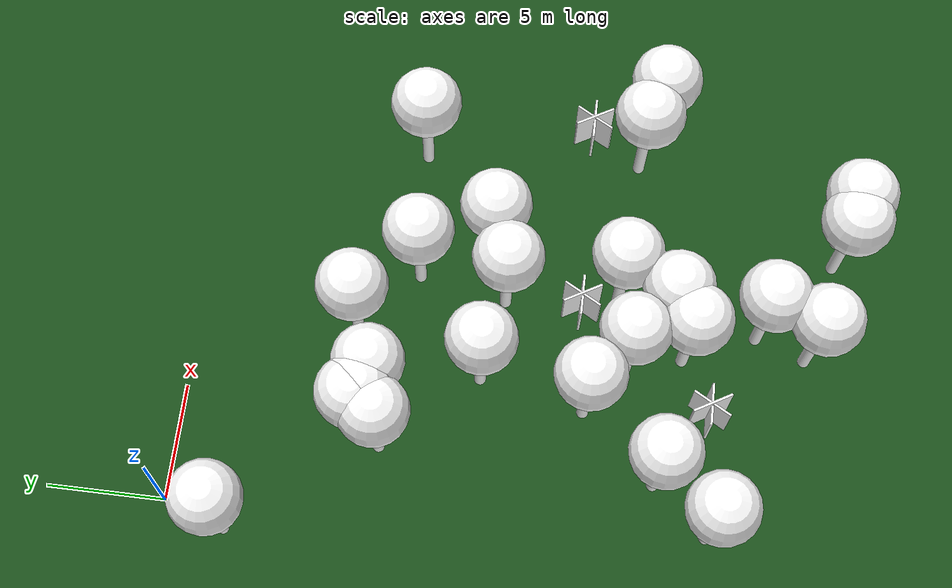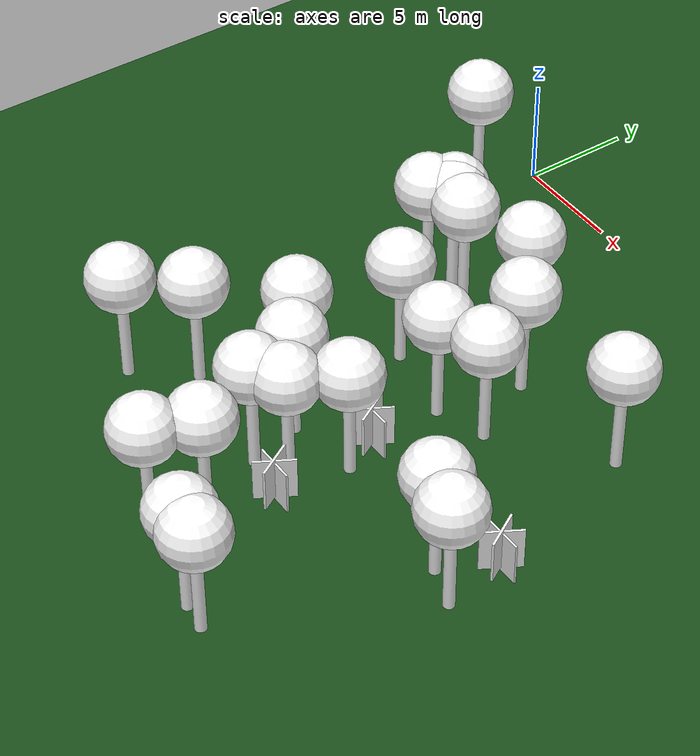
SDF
<sdf version="1.8">
 <world name="forest_world">
  <model name="fire_8">
   <pose>10.39 -16.25 1.00 0 0 0.00</pose>
   <static>true</static>
   <link name="fire_link">
    <visual name="fire_8_fire_main_0">
     <geometry><box><size>1.80 0.10 2.00</size></box></geometry>
     <material>
      <ambient>0.7 0.35 0.0 1</ambient>
      <diffuse>1 1 1 1</diffuse>
      <specular>0 0 0 1</specular>
      <emissive>0 0 0 1</emissive>
      <pbr>
       <metal><albedo_map>textures/fire.png</albedo_map><metalness>0.0</metalness><roughness>0.6</roughness></metal>
      </pbr>
     </material>
     <transparency>0.0</transparency>
     <cast_shadows>false</cast_shadows>
    </visual>
    <visual name="fire_8_fire_60_1">
     <pose>0.00 0.00 0.10 0 0 1.05</pose>
     <geometry><box><size>1.80 0.10 2.00</size></box></geometry>
     <material>
      <ambient>0.7 0.35 0.0 1</ambient>
      <diffuse>1 1 1 1</diffuse>
      <specular>0 0 0 1</specular>
      <emissive>0 0 0 1</emissive>
      <pbr>
       <metal><albedo_map>textures/fire.png</albedo_map><metalness>0.0</metalness><roughness>0.6</roughness></metal>
      </pbr>
     </material>
     <transparency>0.0</transparency>
     <cast_shadows>false</cast_shadows>
    </visual>
    <visual name="fire_8_fire_120_2">
     <pose>0.00 0.00 0.20 0 0 2.09</pose>
     <geometry><box><size>1.80 0.10 2.00</size></box></geometry>
     <material>
      <ambient>0.7 0.35 0.0 1</ambient>
      <diffuse>1 1 1 1</diffuse>
      <specular>0 0 0 1</specular>
      <emissive>0 0 0 1</emissive>
      <pbr>
       <metal><albedo_map>textures/fire.png</albedo_map><metalness>0.0</metalness><roughness>0.6</roughness></metal>
      </pbr>
     </material>
     <transparency>0.0</transparency>
     <cast_shadows>false</cast_shadows>
    </visual>
    <light type="point" name="fire_8_light_0">
     <pose>0.40 0.00 0.50 0 0 0</pose>
     <diffuse>1.0 0.7 0.3 1</diffuse>
     <specular>1.0 0.8 0.3 1</specular>
     <intensity>2</intensity>
     <attenuation>
      <range>2</range>
      <constant>0.1</constant>
      <linear>0.05</linear>
      <quadratic>0.02</quadratic>
     </attenuation>
     <cast_shadows>false</cast_shadows>
    </light>
    <light type="point" name="fire_8_light_1">
     <pose>-0.20 0.35 0.50 0 0 0</pose>
     <diffuse>1.0 0.7 0.3 1</diffuse>
     <specular>1.0 0.8 0.3 1</specular>
     <intensity>2</intensity>
     <attenuation>
      <range>2</range>
      <constant>0.1</constant>
      <linear>0.05</linear>
      <quadratic>0.02</quadratic>
     </attenuation>
     <cast_shadows>false</cast_shadows>
    </light>
    <light type="point" name="fire_8_light_2">
     <pose>-0.20 -0.35 0.50 0 0 0</pose>
     <diffuse>1.0 0.7 0.3 1</diffuse>
     <specular>1.0 0.8 0.3 1</specular>
     <intensity>2</intensity>
     <attenuation>
      <range>2</range>
      <constant>0.1</constant>
      <linear>0.05</linear>
      <quadratic>0.02</quadratic>
     </attenuation>
     <cast_shadows>false</cast_shadows>
    </light>
   </link>
   <plugin filename="libignition-gazebo-pose-publisher-system.so" name="ignition::gazebo::systems::PosePublisher">
    <frame_id>world</frame_id>
    <publish_link_pose>true</publish_link_pose>
    <use_pose_vector_msg>true</use_pose_vector_msg>
    <static_publisher>true</static_publisher>
    <static_update_frequency>1</static_update_frequency>
   </plugin>
  </model>
  <model name="fire_23">
   <pose>10.66 -21.11 1.00 0 0 0.00</pose>
   <static>true</static>
   <link name="fire_link">
    <visual name="fire_23_fire_main_0">
     <geometry><box><size>1.80 0.10 2.00</size></box></geometry>
     <material>
      <ambient>0.7 0.35 0.0 1</ambient>
      <diffuse>1 1 1 1</diffuse>
      <specular>0 0 0 1</specular>
      <emissive>0 0 0 1</emissive>
      <pbr>
       <metal><albedo_map>textures/fire.png</albedo_map><metalness>0.0</metalness><roughness>0.6</roughness></metal>
      </pbr>
     </material>
     <transparency>0.0</transparency>
     <cast_shadows>false</cast_shadows>
    </visual>
    <visual name="fire_23_fire_60_1">
     <pose>0.00 0.00 0.10 0 0 1.05</pose>
     <geometry><box><size>1.80 0.10 2.00</size></box></geometry>
     <material>
      <ambient>0.7 0.35 0.0 1</ambient>
      <diffuse>1 1 1 1</diffuse>
      <specular>0 0 0 1</specular>
      <emissive>0 0 0 1</emissive>
      <pbr>
       <metal><albedo_map>textures/fire.png</albedo_map><metalness>0.0</metalness><roughness>0.6</roughness></metal>
      </pbr>
     </material>
     <transparency>0.0</transparency>
     <cast_shadows>false</cast_shadows>
    </visual>
    <visual name="fire_23_fire_120_2">
     <pose>0.00 0.00 0.20 0 0 2.09</pose>
     <geometry><box><size>1.80 0.10 2.00</size></box></geometry>
     <material>
      <ambient>0.7 0.35 0.0 1</ambient>
      <diffuse>1 1 1 1</diffuse>
      <specular>0 0 0 1</specular>
      <emissive>0 0 0 1</emissive>
      <pbr>
       <metal><albedo_map>textures/fire.png</albedo_map><metalness>0.0</metalness><roughness>0.6</roughness></metal>
      </pbr>
     </material>
     <transparency>0.0</transparency>
     <cast_shadows>false</cast_shadows>
    </visual>
    <light type="point" name="fire_23_light_0">
     <pose>0.40 0.00 0.50 0 0 0</pose>
     <diffuse>1.0 0.7 0.3 1</diffuse>
     <specular>1.0 0.8 0.3 1</specular>
     <intensity>2</intensity>
     <attenuation>
      <range>2</range>
      <constant>0.1</constant>
      <linear>0.05</linear>
      <quadratic>0.02</quadratic>
     </attenuation>
     <cast_shadows>false</cast_shadows>
    </light>
    <light type="point" name="fire_23_light_1">
     <pose>-0.20 0.35 0.50 0 0 0</pose>
     <diffuse>1.0 0.7 0.3 1</diffuse>
     <specular>1.0 0.8 0.3 1</specular>
     <intensity>2</intensity>
     <attenuation>
      <range>2</range>
      <constant>0.1</constant>
      <linear>0.05</linear>
      <quadratic>0.02</quadratic>
     </attenuation>
     <cast_shadows>false</cast_shadows>
    </light>
    <light type="point" name="fire_23_light_2">
     <pose>-0.20 -0.35 0.50 0 0 0</pose>
     <diffuse>1.0 0.7 0.3 1</diffuse>
     <specular>1.0 0.8 0.3 1</specular>
     <intensity>2</intensity>
     <attenuation>
      <range>2</range>
      <constant>0.1</constant>
      <linear>0.05</linear>
      <quadratic>0.02</quadratic>
     </attenuation>
     <cast_shadows>false</cast_shadows>
    </light>
   </link>
   <plugin filename="libignition-gazebo-pose-publisher-system.so" name="ignition::gazebo::systems::PosePublisher">
    <frame_id>world</frame_id>
    <publish_link_pose>true</publish_link_pose>
    <use_pose_vector_msg>true</use_pose_vector_msg>
    <static_publisher>true</static_publisher>
    <static_update_frequency>1</static_update_frequency>
   </plugin>
  </model>
  <model name="fire_44">
   <pose>18.76 -16.03 1.00 0 0 0.00</pose>
   <static>true</static>
   <link name="fire_link">
    <visual name="fire_44_fire_main_0">
     <geometry><box><size>1.80 0.10 2.00</size></box></geometry>
     <material>
      <ambient>0.7 0.35 0.0 1</ambient>
      <diffuse>1 1 1 1</diffuse>
      <specular>0 0 0 1</specular>
      <emissive>0 0 0 1</emissive>
      <pbr>
       <metal><albedo_map>textures/fire.png</albedo_map><metalness>0.0</metalness><roughness>0.6</roughness></metal>
      </pbr>
     </material>
     <transparency>0.0</transparency>
     <cast_shadows>false</cast_shadows>
    </visual>
    <visual name="fire_44_fire_60_1">
     <pose>0.00 0.00 0.10 0 0 1.05</pose>
     <geometry><box><size>1.80 0.10 2.00</size></box></geometry>
     <material>
      <ambient>0.7 0.35 0.0 1</ambient>
      <diffuse>1 1 1 1</diffuse>
      <specular>0 0 0 1</specular>
      <emissive>0 0 0 1</emissive>
      <pbr>
       <metal><albedo_map>textures/fire.png</albedo_map><metalness>0.0</metalness><roughness>0.6</roughness></metal>
      </pbr>
     </material>
     <transparency>0.0</transparency>
     <cast_shadows>false</cast_shadows>
    </visual>
    <visual name="fire_44_fire_120_2">
     <pose>0.00 0.00 0.20 0 0 2.09</pose>
     <geometry><box><size>1.80 0.10 2.00</size></box></geometry>
     <material>
      <ambient>0.7 0.35 0.0 1</ambient>
      <diffuse>1 1 1 1</diffuse>
      <specular>0 0 0 1</specular>
      <emissive>0 0 0 1</emissive>
      <pbr>
       <metal><albedo_map>textures/fire.png</albedo_map><metalness>0.0</metalness><roughness>0.6</roughness></metal>
      </pbr>
     </material>
     <transparency>0.0</transparency>
     <cast_shadows>false</cast_shadows>
    </visual>
    <light type="point" name="fire_44_light_0">
     <pose>0.40 0.00 0.50 0 0 0</pose>
     <diffuse>1.0 0.7 0.3 1</diffuse>
     <specular>1.0 0.8 0.3 1</specular>
     <intensity>2</intensity>
     <attenuation>
      <range>2</range>
      <constant>0.1</constant>
      <linear>0.05</linear>
      <quadratic>0.02</quadratic>
     </attenuation>
     <cast_shadows>false</cast_shadows>
    </light>
    <light type="point" name="fire_44_light_1">
     <pose>-0.20 0.35 0.50 0 0 0</pose>
     <diffuse>1.0 0.7 0.3 1</diffuse>
     <specular>1.0 0.8 0.3 1</specular>
     <intensity>2</intensity>
     <attenuation>
      <range>2</range>
      <constant>0.1</constant>
      <linear>0.05</linear>
      <quadratic>0.02</quadratic>
     </attenuation>
     <cast_shadows>false</cast_shadows>
    </light>
    <light type="point" name="fire_44_light_2">
     <pose>-0.20 -0.35 0.50 0 0 0</pose>
     <diffuse>1.0 0.7 0.3 1</diffuse>
     <specular>1.0 0.8 0.3 1</specular>
     <intensity>2</intensity>
     <attenuation>
      <range>2</range>
      <constant>0.1</constant>
      <linear>0.05</linear>
      <quadratic>0.02</quadratic>
     </attenuation>
     <cast_shadows>false</cast_shadows>
    </light>
   </link>
   <plugin filename="libignition-gazebo-pose-publisher-system.so" name="ignition::gazebo::systems::PosePublisher">
    <frame_id>world</frame_id>
    <publish_link_pose>true</publish_link_pose>
    <use_pose_vector_msg>true</use_pose_vector_msg>
    <static_publisher>true</static_publisher>
    <static_update_frequency>1</static_update_frequency>
   </plugin>
  </model>
  <model name="fire_47">
   <pose>6.20 -21.99 1.00 0 0 0.00</pose>
   <static>true</static>
   <link name="fire_link">
    <visual name="fire_47_fire_main_0">
     <geometry><box><size>1.80 0.10 2.00</size></box></geometry>
     <material>
      <ambient>0.7 0.35 0.0 1</ambient>
      <diffuse>1 1 1 1</diffuse>
      <specular>0 0 0 1</specular>
      <emissive>0 0 0 1</emissive>
      <pbr>
       <metal><albedo_map>textures/fire.png</albedo_map><metalness>0.0</metalness><roughness>0.6</roughness></metal>
      </pbr>
     </material>
     <transparency>0.0</transparency>
     <cast_shadows>false</cast_shadows>
    </visual>
    <visual name="fire_47_fire_60_1">
     <pose>0.00 0.00 0.10 0 0 1.05</pose>
     <geometry><box><size>1.80 0.10 2.00</size></box></geometry>
     <material>
      <ambient>0.7 0.35 0.0 1</ambient>
      <diffuse>1 1 1 1</diffuse>
      <specular>0 0 0 1</specular>
      <emissive>0 0 0 1</emissive>
      <pbr>
       <metal><albedo_map>textures/fire.png</albedo_map><metalness>0.0</metalness><roughness>0.6</roughness></metal>
      </pbr>
     </material>
     <transparency>0.0</transparency>
     <cast_shadows>false</cast_shadows>
    </visual>
    <visual name="fire_47_fire_120_2">
     <pose>0.00 0.00 0.20 0 0 2.09</pose>
     <geometry><box><size>1.80 0.10 2.00</size></box></geometry>
     <material>
      <ambient>0.7 0.35 0.0 1</ambient>
      <diffuse>1 1 1 1</diffuse>
      <specular>0 0 0 1</specular>
      <emissive>0 0 0 1</emissive>
      <pbr>
       <metal><albedo_map>textures/fire.png</albedo_map><metalness>0.0</metalness><roughness>0.6</roughness></metal>
      </pbr>
     </material>
     <transparency>0.0</transparency>
     <cast_shadows>false</cast_shadows>
    </visual>
    <light type="point" name="fire_47_light_0">
     <pose>0.40 0.00 0.50 0 0 0</pose>
     <diffuse>1.0 0.7 0.3 1</diffuse>
     <specular>1.0 0.8 0.3 1</specular>
     <intensity>2</intensity>
     <attenuation>
      <range>2</range>
      <constant>0.1</constant>
      <linear>0.05</linear>
      <quadratic>0.02</quadratic>
     </attenuation>
     <cast_shadows>false</cast_shadows>
    </light>
    <light type="point" name="fire_47_light_1">
     <pose>-0.20 0.35 0.50 0 0 0</pose>
     <diffuse>1.0 0.7 0.3 1</diffuse>
     <specular>1.0 0.8 0.3 1</specular>
     <intensity>2</intensity>
     <attenuation>
      <range>2</range>
      <constant>0.1</constant>
      <linear>0.05</linear>
      <quadratic>0.02</quadratic>
     </attenuation>
     <cast_shadows>false</cast_shadows>
    </light>
    <light type="point" name="fire_47_light_2">
     <pose>-0.20 -0.35 0.50 0 0 0</pose>
     <diffuse>1.0 0.7 0.3 1</diffuse>
     <specular>1.0 0.8 0.3 1</specular>
     <intensity>2</intensity>
     <attenuation>
      <range>2</range>
      <constant>0.1</constant>
      <linear>0.05</linear>
      <quadratic>0.02</quadratic>
     </attenuation>
     <cast_shadows>false</cast_shadows>
    </light>
   </link>
   <plugin filename="libignition-gazebo-pose-publisher-system.so" name="ignition::gazebo::systems::PosePublisher">
    <frame_id>world</frame_id>
    <publish_link_pose>true</publish_link_pose>
    <use_pose_vector_msg>true</use_pose_vector_msg>
    <static_publisher>true</static_publisher>
    <static_update_frequency>1</static_update_frequency>
   </plugin>
  </model>
  <model name="tree_simple496">
   <static>1</static>
   <link name="link">
    <pose>0 0 0.1 0 -0 0</pose>
    <collision name="collision_trunk">
     <pose>0 0 2 0 -0 0</pose>
     <geometry><cylinder><radius>0.25</radius><length>4</length></cylinder></geometry>
    </collision>
    <collision name="collision_treetop">
     <pose>0 0 5.2 0 -0 0</pose>
     <geometry><sphere><radius>1.5</radius></sphere></geometry>
    </collision>
    <visual name="trunk">
     <pose>0 0 2 0 -0 0</pose>
     <geometry><cylinder><radius>0.25</radius><length>4</length></cylinder></geometry>
     <material>
      <ambient>0.5 0.5 0.5 1</ambient>
      <diffuse>1.0 1.0 1.0 1</diffuse>
      <specular>0.0 0.0 0.0 1</specular>
      <pbr>
       <metal>
        <albedo_map>../worlds/textures/tree_simple_trunk.jpg</albedo_map>
        <metalness>0.0</metalness>
        <roughness>0.8</roughness>
       </metal>
      </pbr>
     </material>
    </visual>
    <visual name="treetop">
     <pose>0 0 5.2 0 -0 0</pose>
     <geometry><sphere><radius>1.5</radius></sphere></geometry>
     <material>
      <ambient>0.5 0.5 0.5 1</ambient>
      <diffuse>1.0 1.0 1.0 1</diffuse>
      <specular>0.0 0.0 0.0 1</specular>
      <pbr>
       <metal>
        <albedo_map>../worlds/textures/tree_simple_treetop.jpg</albedo_map>
        <metalness>0.0</metalness>
        <roughness>0.9</roughness>
       </metal>
      </pbr>
     </material>
    </visual>
   </link>
   <pose>13.6194298432 -26.9856291803 0 0 -0 0</pose>
  </model>
  <model name="tree_simple478">
   <static>1</static>
   <link name="link">
    <pose>0 0 0.1 0 -0 0</pose>
    <collision name="collision_trunk">
     <pose>0 0 2 0 -0 0</pose>
     <geometry><cylinder><radius>0.25</radius><length>4</length></cylinder></geometry>
    </collision>
    <collision name="collision_treetop">
     <pose>0 0 5.2 0 -0 0</pose>
     <geometry><sphere><radius>1.5</radius></sphere></geometry>
    </collision>
    <visual name="trunk">
     <pose>0 0 2 0 -0 0</pose>
     <geometry><cylinder><radius>0.25</radius><length>4</length></cylinder></geometry>
     <material>
      <ambient>0.5 0.5 0.5 1</ambient>
      <diffuse>1.0 1.0 1.0 1</diffuse>
      <specular>0.0 0.0 0.0 1</specular>
      <pbr>
       <metal>
        <albedo_map>../worlds/textures/tree_simple_trunk.jpg</albedo_map>
        <metalness>0.0</metalness>
        <roughness>0.8</roughness>
       </metal>
      </pbr>
     </material>
    </visual>
    <visual name="treetop">
     <pose>0 0 5.2 0 -0 0</pose>
     <geometry><sphere><radius>1.5</radius></sphere></geometry>
     <material>
      <ambient>0.5 0.5 0.5 1</ambient>
      <diffuse>1.0 1.0 1.0 1</diffuse>
      <specular>0.0 0.0 0.0 1</specular>
      <pbr>
       <metal>
        <albedo_map>../worlds/textures/tree_simple_treetop.jpg</albedo_map>
        <metalness>0.0</metalness>
        <roughness>0.9</roughness>
       </metal>
      </pbr>
     </material>
    </visual>
   </link>
   <pose>6.74093075138 -12.3162984353 0 0 -0 0</pose>
  </model>
  <model name="tree_simple472">
   <static>1</static>
   <link name="link">
    <pose>0 0 0.1 0 -0 0</pose>
    <collision name="collision_trunk">
     <pose>0 0 2 0 -0 0</pose>
     <geometry><cylinder><radius>0.25</radius><length>4</length></cylinder></geometry>
    </collision>
    <collision name="collision_treetop">
     <pose>0 0 5.2 0 -0 0</pose>
     <geometry><sphere><radius>1.5</radius></sphere></geometry>
    </collision>
    <visual name="trunk">
     <pose>0 0 2 0 -0 0</pose>
     <geometry><cylinder><radius>0.25</radius><length>4</length></cylinder></geometry>
     <material>
      <ambient>0.5 0.5 0.5 1</ambient>
      <diffuse>1.0 1.0 1.0 1</diffuse>
      <specular>0.0 0.0 0.0 1</specular>
      <pbr>
       <metal>
        <albedo_map>../worlds/textures/tree_simple_trunk.jpg</albedo_map>
        <metalness>0.0</metalness>
        <roughness>0.8</roughness>
       </metal>
      </pbr>
     </material>
    </visual>
    <visual name="treetop">
     <pose>0 0 5.2 0 -0 0</pose>
     <geometry><sphere><radius>1.5</radius></sphere></geometry>
     <material>
      <ambient>0.5 0.5 0.5 1</ambient>
      <diffuse>1.0 1.0 1.0 1</diffuse>
      <specular>0.0 0.0 0.0 1</specular>
      <pbr>
       <metal>
        <albedo_map>../worlds/textures/tree_simple_treetop.jpg</albedo_map>
        <metalness>0.0</metalness>
        <roughness>0.9</roughness>
       </metal>
      </pbr>
     </material>
    </visual>
   </link>
   <pose>9.92228677952 -23.8303447852 0 0 -0 0</pose>
  </model>
  <model name="tree_simple463">
   <static>1</static>
   <link name="link">
    <pose>0 0 0.1 0 -0 0</pose>
    <collision name="collision_trunk">
     <pose>0 0 2 0 -0 0</pose>
     <geometry><cylinder><radius>0.25</radius><length>4</length></cylinder></geometry>
    </collision>
    <collision name="collision_treetop">
     <pose>0 0 5.2 0 -0 0</pose>
     <geometry><sphere><radius>1.5</radius></sphere></geometry>
    </collision>
    <visual name="trunk">
     <pose>0 0 2 0 -0 0</pose>
     <geometry><cylinder><radius>0.25</radius><length>4</length></cylinder></geometry>
     <material>
      <ambient>0.5 0.5 0.5 1</ambient>
      <diffuse>1.0 1.0 1.0 1</diffuse>
      <specular>0.0 0.0 0.0 1</specular>
      <pbr>
       <metal>
        <albedo_map>../worlds/textures/tree_simple_trunk.jpg</albedo_map>
        <metalness>0.0</metalness>
        <roughness>0.8</roughness>
       </metal>
      </pbr>
     </material>
    </visual>
    <visual name="treetop">
     <pose>0 0 5.2 0 -0 0</pose>
     <geometry><sphere><radius>1.5</radius></sphere></geometry>
     <material>
      <ambient>0.5 0.5 0.5 1</ambient>
      <diffuse>1.0 1.0 1.0 1</diffuse>
      <specular>0.0 0.0 0.0 1</specular>
      <pbr>
       <metal>
        <albedo_map>../worlds/textures/tree_simple_treetop.jpg</albedo_map>
        <metalness>0.0</metalness>
        <roughness>0.9</roughness>
       </metal>
      </pbr>
     </material>
    </visual>
   </link>
   <pose>4.14452898467 -7.71733475474 0 0 -0 0</pose>
  </model>
  <model name="tree_simple439">
   <static>1</static>
   <link name="link">
    <pose>0 0 0.1 0 -0 0</pose>
    <collision name="collision_trunk">
     <pose>0 0 2 0 -0 0</pose>
     <geometry><cylinder><radius>0.25</radius><length>4</length></cylinder></geometry>
    </collision>
    <collision name="collision_treetop">
     <pose>0 0 5.2 0 -0 0</pose>
     <geometry><sphere><radius>1.5</radius></sphere></geometry>
    </collision>
    <visual name="trunk">
     <pose>0 0 2 0 -0 0</pose>
     <geometry><cylinder><radius>0.25</radius><length>4</length></cylinder></geometry>
     <material>
      <ambient>0.5 0.5 0.5 1</ambient>
      <diffuse>1.0 1.0 1.0 1</diffuse>
      <specular>0.0 0.0 0.0 1</specular>
      <pbr>
       <metal>
        <albedo_map>../worlds/textures/tree_simple_trunk.jpg</albedo_map>
        <metalness>0.0</metalness>
        <roughness>0.8</roughness>
       </metal>
      </pbr>
     </material>
    </visual>
    <visual name="treetop">
     <pose>0 0 5.2 0 -0 0</pose>
     <geometry><sphere><radius>1.5</radius></sphere></geometry>
     <material>
      <ambient>0.5 0.5 0.5 1</ambient>
      <diffuse>1.0 1.0 1.0 1</diffuse>
      <specular>0.0 0.0 0.0 1</specular>
      <pbr>
       <metal>
        <albedo_map>../worlds/textures/tree_simple_treetop.jpg</albedo_map>
        <metalness>0.0</metalness>
        <roughness>0.9</roughness>
       </metal>
      </pbr>
     </material>
    </visual>
   </link>
   <pose>8.56501316053 -20.7640585998 0 0 -0 0</pose>
  </model>
  <model name="tree_simple432">
   <static>1</static>
   <link name="link">
    <pose>0 0 0.1 0 -0 0</pose>
    <collision name="collision_trunk">
     <pose>0 0 2 0 -0 0</pose>
     <geometry><cylinder><radius>0.25</radius><length>4</length></cylinder></geometry>
    </collision>
    <collision name="collision_treetop">
     <pose>0 0 5.2 0 -0 0</pose>
     <geometry><sphere><radius>1.5</radius></sphere></geometry>
    </collision>
    <visual name="trunk">
     <pose>0 0 2 0 -0 0</pose>
     <geometry><cylinder><radius>0.25</radius><length>4</length></cylinder></geometry>
     <material>
      <ambient>0.5 0.5 0.5 1</ambient>
      <diffuse>1.0 1.0 1.0 1</diffuse>
      <specular>0.0 0.0 0.0 1</specular>
      <pbr>
       <metal>
        <albedo_map>../worlds/textures/tree_simple_trunk.jpg</albedo_map>
        <metalness>0.0</metalness>
        <roughness>0.8</roughness>
       </metal>
      </pbr>
     </material>
    </visual>
    <visual name="treetop">
     <pose>0 0 5.2 0 -0 0</pose>
     <geometry><sphere><radius>1.5</radius></sphere></geometry>
     <material>
      <ambient>0.5 0.5 0.5 1</ambient>
      <diffuse>1.0 1.0 1.0 1</diffuse>
      <specular>0.0 0.0 0.0 1</specular>
      <pbr>
       <metal>
        <albedo_map>../worlds/textures/tree_simple_treetop.jpg</albedo_map>
        <metalness>0.0</metalness>
        <roughness>0.9</roughness>
       </metal>
      </pbr>
     </material>
    </visual>
   </link>
   <pose>8.39657738542 -6.88848549894 0 0 -0 0</pose>
  </model>
  <model name="tree_simple428">
   <static>1</static>
   <link name="link">
    <pose>0 0 0.1 0 -0 0</pose>
    <collision name="collision_trunk">
     <pose>0 0 2 0 -0 0</pose>
     <geometry><cylinder><radius>0.25</radius><length>4</length></cylinder></geometry>
    </collision>
    <collision name="collision_treetop">
     <pose>0 0 5.2 0 -0 0</pose>
     <geometry><sphere><radius>1.5</radius></sphere></geometry>
    </collision>
    <visual name="trunk">
     <pose>0 0 2 0 -0 0</pose>
     <geometry><cylinder><radius>0.25</radius><length>4</length></cylinder></geometry>
     <material>
      <ambient>0.5 0.5 0.5 1</ambient>
      <diffuse>1.0 1.0 1.0 1</diffuse>
      <specular>0.0 0.0 0.0 1</specular>
      <pbr>
       <metal>
        <albedo_map>../worlds/textures/tree_simple_trunk.jpg</albedo_map>
        <metalness>0.0</metalness>
        <roughness>0.8</roughness>
       </metal>
      </pbr>
     </material>
    </visual>
    <visual name="treetop">
     <pose>0 0 5.2 0 -0 0</pose>
     <geometry><sphere><radius>1.5</radius></sphere></geometry>
     <material>
      <ambient>0.5 0.5 0.5 1</ambient>
      <diffuse>1.0 1.0 1.0 1</diffuse>
      <specular>0.0 0.0 0.0 1</specular>
      <pbr>
       <metal>
        <albedo_map>../worlds/textures/tree_simple_treetop.jpg</albedo_map>
        <metalness>0.0</metalness>
        <roughness>0.9</roughness>
       </metal>
      </pbr>
     </material>
    </visual>
   </link>
   <pose>9.87663766252 -19.9509422297 0 0 -0 0</pose>
  </model>
  <model name="tree_simple389">
   <static>1</static>
   <link name="link">
    <pose>0 0 0.1 0 -0 0</pose>
    <collision name="collision_trunk">
     <pose>0 0 2 0 -0 0</pose>
     <geometry><cylinder><radius>0.25</radius><length>4</length></cylinder></geometry>
    </collision>
    <collision name="collision_treetop">
     <pose>0 0 5.2 0 -0 0</pose>
     <geometry><sphere><radius>1.5</radius></sphere></geometry>
    </collision>
    <visual name="trunk">
     <pose>0 0 2 0 -0 0</pose>
     <geometry><cylinder><radius>0.25</radius><length>4</length></cylinder></geometry>
     <material>
      <ambient>0.5 0.5 0.5 1</ambient>
      <diffuse>1.0 1.0 1.0 1</diffuse>
      <specular>0.0 0.0 0.0 1</specular>
      <pbr>
       <metal>
        <albedo_map>../worlds/textures/tree_simple_trunk.jpg</albedo_map>
        <metalness>0.0</metalness>
        <roughness>0.8</roughness>
       </metal>
      </pbr>
     </material>
    </visual>
    <visual name="treetop">
     <pose>0 0 5.2 0 -0 0</pose>
     <geometry><sphere><radius>1.5</radius></sphere></geometry>
     <material>
      <ambient>0.5 0.5 0.5 1</ambient>
      <diffuse>1.0 1.0 1.0 1</diffuse>
      <specular>0.0 0.0 0.0 1</specular>
      <pbr>
       <metal>
        <albedo_map>../worlds/textures/tree_simple_treetop.jpg</albedo_map>
        <metalness>0.0</metalness>
        <roughness>0.9</roughness>
       </metal>
      </pbr>
     </material>
    </visual>
   </link>
   <pose>12.5934036343 -12.2598342596 0 0 -0 0</pose>
  </model>
  <model name="tree_simple327">
   <static>1</static>
   <link name="link">
    <pose>0 0 0.1 0 -0 0</pose>
    <collision name="collision_trunk">
     <pose>0 0 2 0 -0 0</pose>
     <geometry><cylinder><radius>0.25</radius><length>4</length></cylinder></geometry>
    </collision>
    <collision name="collision_treetop">
     <pose>0 0 5.2 0 -0 0</pose>
     <geometry><sphere><radius>1.5</radius></sphere></geometry>
    </collision>
    <visual name="trunk">
     <pose>0 0 2 0 -0 0</pose>
     <geometry><cylinder><radius>0.25</radius><length>4</length></cylinder></geometry>
     <material>
      <ambient>0.5 0.5 0.5 1</ambient>
      <diffuse>1.0 1.0 1.0 1</diffuse>
      <specular>0.0 0.0 0.0 1</specular>
      <pbr>
       <metal>
        <albedo_map>../worlds/textures/tree_simple_trunk.jpg</albedo_map>
        <metalness>0.0</metalness>
        <roughness>0.8</roughness>
       </metal>
      </pbr>
     </material>
    </visual>
    <visual name="treetop">
     <pose>0 0 5.2 0 -0 0</pose>
     <geometry><sphere><radius>1.5</radius></sphere></geometry>
     <material>
      <ambient>0.5 0.5 0.5 1</ambient>
      <diffuse>1.0 1.0 1.0 1</diffuse>
      <specular>0.0 0.0 0.0 1</specular>
      <pbr>
       <metal>
        <albedo_map>../worlds/textures/tree_simple_treetop.jpg</albedo_map>
        <metalness>0.0</metalness>
        <roughness>0.9</roughness>
       </metal>
      </pbr>
     </material>
    </visual>
   </link>
   <pose>5.78438571624 -16.7663148306 0 0 -0 0</pose>
  </model>
  <model name="tree_simple317">
   <static>1</static>
   <link name="link">
    <pose>0 0 0.1 0 -0 0</pose>
    <collision name="collision_trunk">
     <pose>0 0 2 0 -0 0</pose>
     <geometry><cylinder><radius>0.25</radius><length>4</length></cylinder></geometry>
    </collision>
    <collision name="collision_treetop">
     <pose>0 0 5.2 0 -0 0</pose>
     <geometry><sphere><radius>1.5</radius></sphere></geometry>
    </collision>
    <visual name="trunk">
     <pose>0 0 2 0 -0 0</pose>
     <geometry><cylinder><radius>0.25</radius><length>4</length></cylinder></geometry>
     <material>
      <ambient>0.5 0.5 0.5 1</ambient>
      <diffuse>1.0 1.0 1.0 1</diffuse>
      <specular>0.0 0.0 0.0 1</specular>
      <pbr>
       <metal>
        <albedo_map>../worlds/textures/tree_simple_trunk.jpg</albedo_map>
        <metalness>0.0</metalness>
        <roughness>0.8</roughness>
       </metal>
      </pbr>
     </material>
    </visual>
    <visual name="treetop">
     <pose>0 0 5.2 0 -0 0</pose>
     <geometry><sphere><radius>1.5</radius></sphere></geometry>
     <material>
      <ambient>0.5 0.5 0.5 1</ambient>
      <diffuse>1.0 1.0 1.0 1</diffuse>
      <specular>0.0 0.0 0.0 1</specular>
      <pbr>
       <metal>
        <albedo_map>../worlds/textures/tree_simple_treetop.jpg</albedo_map>
        <metalness>0.0</metalness>
        <roughness>0.9</roughness>
       </metal>
      </pbr>
     </material>
    </visual>
   </link>
   <pose>1.01183279708 -22.2370296953 0 0 -0 0</pose>
  </model>
  <model name="tree_simple309">
   <static>1</static>
   <link name="link">
    <pose>0 0 0.1 0 -0 0</pose>
    <collision name="collision_trunk">
     <pose>0 0 2 0 -0 0</pose>
     <geometry><cylinder><radius>0.25</radius><length>4</length></cylinder></geometry>
    </collision>
    <collision name="collision_treetop">
     <pose>0 0 5.2 0 -0 0</pose>
     <geometry><sphere><radius>1.5</radius></sphere></geometry>
    </collision>
    <visual name="trunk">
     <pose>0 0 2 0 -0 0</pose>
     <geometry><cylinder><radius>0.25</radius><length>4</length></cylinder></geometry>
     <material>
      <ambient>0.5 0.5 0.5 1</ambient>
      <diffuse>1.0 1.0 1.0 1</diffuse>
      <specular>0.0 0.0 0.0 1</specular>
      <pbr>
       <metal>
        <albedo_map>../worlds/textures/tree_simple_trunk.jpg</albedo_map>
        <metalness>0.0</metalness>
        <roughness>0.8</roughness>
       </metal>
      </pbr>
     </material>
    </visual>
    <visual name="treetop">
     <pose>0 0 5.2 0 -0 0</pose>
     <geometry><sphere><radius>1.5</radius></sphere></geometry>
     <material>
      <ambient>0.5 0.5 0.5 1</ambient>
      <diffuse>1.0 1.0 1.0 1</diffuse>
      <specular>0.0 0.0 0.0 1</specular>
      <pbr>
       <metal>
        <albedo_map>../worlds/textures/tree_simple_treetop.jpg</albedo_map>
        <metalness>0.0</metalness>
        <roughness>0.9</roughness>
       </metal>
      </pbr>
     </material>
    </visual>
   </link>
   <pose>19.1748935323 -18.8000539767 0 0 -0 0</pose>
  </model>
  <model name="tree_simple292">
   <static>1</static>
   <link name="link">
    <pose>0 0 0.1 0 -0 0</pose>
    <collision name="collision_trunk">
     <pose>0 0 2 0 -0 0</pose>
     <geometry><cylinder><radius>0.25</radius><length>4</length></cylinder></geometry>
    </collision>
    <collision name="collision_treetop">
     <pose>0 0 5.2 0 -0 0</pose>
     <geometry><sphere><radius>1.5</radius></sphere></geometry>
    </collision>
    <visual name="trunk">
     <pose>0 0 2 0 -0 0</pose>
     <geometry><cylinder><radius>0.25</radius><length>4</length></cylinder></geometry>
     <material>
      <ambient>0.5 0.5 0.5 1</ambient>
      <diffuse>1.0 1.0 1.0 1</diffuse>
      <specular>0.0 0.0 0.0 1</specular>
      <pbr>
       <metal>
        <albedo_map>../worlds/textures/tree_simple_trunk.jpg</albedo_map>
        <metalness>0.0</metalness>
        <roughness>0.8</roughness>
       </metal>
      </pbr>
     </material>
    </visual>
    <visual name="treetop">
     <pose>0 0 5.2 0 -0 0</pose>
     <geometry><sphere><radius>1.5</radius></sphere></geometry>
     <material>
      <ambient>0.5 0.5 0.5 1</ambient>
      <diffuse>1.0 1.0 1.0 1</diffuse>
      <specular>0.0 0.0 0.0 1</specular>
      <pbr>
       <metal>
        <albedo_map>../worlds/textures/tree_simple_treetop.jpg</albedo_map>
        <metalness>0.0</metalness>
        <roughness>0.9</roughness>
       </metal>
      </pbr>
     </material>
    </visual>
   </link>
   <pose>16.8917664362 -8.8290409333 0 0 -0 0</pose>
  </model>
  <model name="tree_simple222">
   <static>1</static>
   <link name="link">
    <pose>0 0 0.1 0 -0 0</pose>
    <collision name="collision_trunk">
     <pose>0 0 2 0 -0 0</pose>
     <geometry><cylinder><radius>0.25</radius><length>4</length></cylinder></geometry>
    </collision>
    <collision name="collision_treetop">
     <pose>0 0 5.2 0 -0 0</pose>
     <geometry><sphere><radius>1.5</radius></sphere></geometry>
    </collision>
    <visual name="trunk">
     <pose>0 0 2 0 -0 0</pose>
     <geometry><cylinder><radius>0.25</radius><length>4</length></cylinder></geometry>
     <material>
      <ambient>0.5 0.5 0.5 1</ambient>
      <diffuse>1.0 1.0 1.0 1</diffuse>
      <specular>0.0 0.0 0.0 1</specular>
      <pbr>
       <metal>
        <albedo_map>../worlds/textures/tree_simple_trunk.jpg</albedo_map>
        <metalness>0.0</metalness>
        <roughness>0.8</roughness>
       </metal>
      </pbr>
     </material>
    </visual>
    <visual name="treetop">
     <pose>0 0 5.2 0 -0 0</pose>
     <geometry><sphere><radius>1.5</radius></sphere></geometry>
     <material>
      <ambient>0.5 0.5 0.5 1</ambient>
      <diffuse>1.0 1.0 1.0 1</diffuse>
      <specular>0.0 0.0 0.0 1</specular>
      <pbr>
       <metal>
        <albedo_map>../worlds/textures/tree_simple_treetop.jpg</albedo_map>
        <metalness>0.0</metalness>
        <roughness>0.9</roughness>
       </metal>
      </pbr>
     </material>
    </visual>
   </link>
   <pose>3.92504774623 -7.51224141252 0 0 -0 0</pose>
  </model>
  <model name="tree_simple195">
   <static>1</static>
   <link name="link">
    <pose>0 0 0.1 0 -0 0</pose>
    <collision name="collision_trunk">
     <pose>0 0 2 0 -0 0</pose>
     <geometry><cylinder><radius>0.25</radius><length>4</length></cylinder></geometry>
    </collision>
    <collision name="collision_treetop">
     <pose>0 0 5.2 0 -0 0</pose>
     <geometry><sphere><radius>1.5</radius></sphere></geometry>
    </collision>
    <visual name="trunk">
     <pose>0 0 2 0 -0 0</pose>
     <geometry><cylinder><radius>0.25</radius><length>4</length></cylinder></geometry>
     <material>
      <ambient>0.5 0.5 0.5 1</ambient>
      <diffuse>1.0 1.0 1.0 1</diffuse>
      <specular>0.0 0.0 0.0 1</specular>
      <pbr>
       <metal>
        <albedo_map>../worlds/textures/tree_simple_trunk.jpg</albedo_map>
        <metalness>0.0</metalness>
        <roughness>0.8</roughness>
       </metal>
      </pbr>
     </material>
    </visual>
    <visual name="treetop">
     <pose>0 0 5.2 0 -0 0</pose>
     <geometry><sphere><radius>1.5</radius></sphere></geometry>
     <material>
      <ambient>0.5 0.5 0.5 1</ambient>
      <diffuse>1.0 1.0 1.0 1</diffuse>
      <specular>0.0 0.0 0.0 1</specular>
      <pbr>
       <metal>
        <albedo_map>../worlds/textures/tree_simple_treetop.jpg</albedo_map>
        <metalness>0.0</metalness>
        <roughness>0.9</roughness>
       </metal>
      </pbr>
     </material>
    </visual>
   </link>
   <pose>2.97634626893 -19.931363898 0 0 -0 0</pose>
  </model>
  <model name="tree_simple191">
   <static>1</static>
   <link name="link">
    <pose>0 0 0.1 0 -0 0</pose>
    <collision name="collision_trunk">
     <pose>0 0 2 0 -0 0</pose>
     <geometry><cylinder><radius>0.25</radius><length>4</length></cylinder></geometry>
    </collision>
    <collision name="collision_treetop">
     <pose>0 0 5.2 0 -0 0</pose>
     <geometry><sphere><radius>1.5</radius></sphere></geometry>
    </collision>
    <visual name="trunk">
     <pose>0 0 2 0 -0 0</pose>
     <geometry><cylinder><radius>0.25</radius><length>4</length></cylinder></geometry>
     <material>
      <ambient>0.5 0.5 0.5 1</ambient>
      <diffuse>1.0 1.0 1.0 1</diffuse>
      <specular>0.0 0.0 0.0 1</specular>
      <pbr>
       <metal>
        <albedo_map>../worlds/textures/tree_simple_trunk.jpg</albedo_map>
        <metalness>0.0</metalness>
        <roughness>0.8</roughness>
       </metal>
      </pbr>
     </material>
    </visual>
    <visual name="treetop">
     <pose>0 0 5.2 0 -0 0</pose>
     <geometry><sphere><radius>1.5</radius></sphere></geometry>
     <material>
      <ambient>0.5 0.5 0.5 1</ambient>
      <diffuse>1.0 1.0 1.0 1</diffuse>
      <specular>0.0 0.0 0.0 1</specular>
      <pbr>
       <metal>
        <albedo_map>../worlds/textures/tree_simple_treetop.jpg</albedo_map>
        <metalness>0.0</metalness>
        <roughness>0.9</roughness>
       </metal>
      </pbr>
     </material>
    </visual>
   </link>
   <pose>7.88783183775 -18.3803184039 0 0 -0 0</pose>
  </model>
  <model name="tree_simple168">
   <static>1</static>
   <link name="link">
    <pose>0 0 0.1 0 -0 0</pose>
    <collision name="collision_trunk">
     <pose>0 0 2 0 -0 0</pose>
     <geometry><cylinder><radius>0.25</radius><length>4</length></cylinder></geometry>
    </collision>
    <collision name="collision_treetop">
     <pose>0 0 5.2 0 -0 0</pose>
     <geometry><sphere><radius>1.5</radius></sphere></geometry>
    </collision>
    <visual name="trunk">
     <pose>0 0 2 0 -0 0</pose>
     <geometry><cylinder><radius>0.25</radius><length>4</length></cylinder></geometry>
     <material>
      <ambient>0.5 0.5 0.5 1</ambient>
      <diffuse>1.0 1.0 1.0 1</diffuse>
      <specular>0.0 0.0 0.0 1</specular>
      <pbr>
       <metal>
        <albedo_map>../worlds/textures/tree_simple_trunk.jpg</albedo_map>
        <metalness>0.0</metalness>
        <roughness>0.8</roughness>
       </metal>
      </pbr>
     </material>
    </visual>
    <visual name="treetop">
     <pose>0 0 5.2 0 -0 0</pose>
     <geometry><sphere><radius>1.5</radius></sphere></geometry>
     <material>
      <ambient>0.5 0.5 0.5 1</ambient>
      <diffuse>1.0 1.0 1.0 1</diffuse>
      <specular>0.0 0.0 0.0 1</specular>
      <pbr>
       <metal>
        <albedo_map>../worlds/textures/tree_simple_treetop.jpg</albedo_map>
        <metalness>0.0</metalness>
        <roughness>0.9</roughness>
       </metal>
      </pbr>
     </material>
    </visual>
   </link>
   <pose>14.8234440125 -27.1346741382 0 0 -0 0</pose>
  </model>
  <model name="tree_simple157">
   <static>1</static>
   <link name="link">
    <pose>0 0 0.1 0 -0 0</pose>
    <collision name="collision_trunk">
     <pose>0 0 2 0 -0 0</pose>
     <geometry><cylinder><radius>0.25</radius><length>4</length></cylinder></geometry>
    </collision>
    <collision name="collision_treetop">
     <pose>0 0 5.2 0 -0 0</pose>
     <geometry><sphere><radius>1.5</radius></sphere></geometry>
    </collision>
    <visual name="trunk">
     <pose>0 0 2 0 -0 0</pose>
     <geometry><cylinder><radius>0.25</radius><length>4</length></cylinder></geometry>
     <material>
      <ambient>0.5 0.5 0.5 1</ambient>
      <diffuse>1.0 1.0 1.0 1</diffuse>
      <specular>0.0 0.0 0.0 1</specular>
      <pbr>
       <metal>
        <albedo_map>../worlds/textures/tree_simple_trunk.jpg</albedo_map>
        <metalness>0.0</metalness>
        <roughness>0.8</roughness>
       </metal>
      </pbr>
     </material>
    </visual>
    <visual name="treetop">
     <pose>0 0 5.2 0 -0 0</pose>
     <geometry><sphere><radius>1.5</radius></sphere></geometry>
     <material>
      <ambient>0.5 0.5 0.5 1</ambient>
      <diffuse>1.0 1.0 1.0 1</diffuse>
      <specular>0.0 0.0 0.0 1</specular>
      <pbr>
       <metal>
        <albedo_map>../worlds/textures/tree_simple_treetop.jpg</albedo_map>
        <metalness>0.0</metalness>
        <roughness>0.9</roughness>
       </metal>
      </pbr>
     </material>
    </visual>
   </link>
   <pose>17.4643259264 -18.2232751505 0 0 -0 0</pose>
  </model>
  <model name="tree_simple154">
   <static>1</static>
   <link name="link">
    <pose>0 0 0.1 0 -0 0</pose>
    <collision name="collision_trunk">
     <pose>0 0 2 0 -0 0</pose>
     <geometry><cylinder><radius>0.25</radius><length>4</length></cylinder></geometry>
    </collision>
    <collision name="collision_treetop">
     <pose>0 0 5.2 0 -0 0</pose>
     <geometry><sphere><radius>1.5</radius></sphere></geometry>
    </collision>
    <visual name="trunk">
     <pose>0 0 2 0 -0 0</pose>
     <geometry><cylinder><radius>0.25</radius><length>4</length></cylinder></geometry>
     <material>
      <ambient>0.5 0.5 0.5 1</ambient>
      <diffuse>1.0 1.0 1.0 1</diffuse>
      <specular>0.0 0.0 0.0 1</specular>
      <pbr>
       <metal>
        <albedo_map>../worlds/textures/tree_simple_trunk.jpg</albedo_map>
        <metalness>0.0</metalness>
        <roughness>0.8</roughness>
       </metal>
      </pbr>
     </material>
    </visual>
    <visual name="treetop">
     <pose>0 0 5.2 0 -0 0</pose>
     <geometry><sphere><radius>1.5</radius></sphere></geometry>
     <material>
      <ambient>0.5 0.5 0.5 1</ambient>
      <diffuse>1.0 1.0 1.0 1</diffuse>
      <specular>0.0 0.0 0.0 1</specular>
      <pbr>
       <metal>
        <albedo_map>../worlds/textures/tree_simple_treetop.jpg</albedo_map>
        <metalness>0.0</metalness>
        <roughness>0.9</roughness>
       </metal>
      </pbr>
     </material>
    </visual>
   </link>
   <pose>3.295584565 -8.44091810905 0 0 -0 0</pose>
  </model>
  <model name="tree_simple124">
   <static>1</static>
   <link name="link">
    <pose>0 0 0.1 0 -0 0</pose>
    <collision name="collision_trunk">
     <pose>0 0 2 0 -0 0</pose>
     <geometry><cylinder><radius>0.25</radius><length>4</length></cylinder></geometry>
    </collision>
    <collision name="collision_treetop">
     <pose>0 0 5.2 0 -0 0</pose>
     <geometry><sphere><radius>1.5</radius></sphere></geometry>
    </collision>
    <visual name="trunk">
     <pose>0 0 2 0 -0 0</pose>
     <geometry><cylinder><radius>0.25</radius><length>4</length></cylinder></geometry>
     <material>
      <ambient>0.5 0.5 0.5 1</ambient>
      <diffuse>1.0 1.0 1.0 1</diffuse>
      <specular>0.0 0.0 0.0 1</specular>
      <pbr>
       <metal>
        <albedo_map>../worlds/textures/tree_simple_trunk.jpg</albedo_map>
        <metalness>0.0</metalness>
        <roughness>0.8</roughness>
       </metal>
      </pbr>
     </material>
    </visual>
    <visual name="treetop">
     <pose>0 0 5.2 0 -0 0</pose>
     <geometry><sphere><radius>1.5</radius></sphere></geometry>
     <material>
      <ambient>0.5 0.5 0.5 1</ambient>
      <diffuse>1.0 1.0 1.0 1</diffuse>
      <specular>0.0 0.0 0.0 1</specular>
      <pbr>
       <metal>
        <albedo_map>../worlds/textures/tree_simple_treetop.jpg</albedo_map>
        <metalness>0.0</metalness>
        <roughness>0.9</roughness>
       </metal>
      </pbr>
     </material>
    </visual>
   </link>
   <pose>5.29940018808 -7.97080739541 0 0 -0 0</pose>
  </model>
  <model name="tree_simple106">
   <static>1</static>
   <link name="link">
    <pose>0 0 0.1 0 -0 0</pose>
    <collision name="collision_trunk">
     <pose>0 0 2 0 -0 0</pose>
     <geometry><cylinder><radius>0.25</radius><length>4</length></cylinder></geometry>
    </collision>
    <collision name="collision_treetop">
     <pose>0 0 5.2 0 -0 0</pose>
     <geometry><sphere><radius>1.5</radius></sphere></geometry>
    </collision>
    <visual name="trunk">
     <pose>0 0 2 0 -0 0</pose>
     <geometry><cylinder><radius>0.25</radius><length>4</length></cylinder></geometry>
     <material>
      <ambient>0.5 0.5 0.5 1</ambient>
      <diffuse>1.0 1.0 1.0 1</diffuse>
      <specular>0.0 0.0 0.0 1</specular>
      <pbr>
       <metal>
        <albedo_map>../worlds/textures/tree_simple_trunk.jpg</albedo_map>
        <metalness>0.0</metalness>
        <roughness>0.8</roughness>
       </metal>
      </pbr>
     </material>
    </visual>
    <visual name="treetop">
     <pose>0 0 5.2 0 -0 0</pose>
     <geometry><sphere><radius>1.5</radius></sphere></geometry>
     <material>
      <ambient>0.5 0.5 0.5 1</ambient>
      <diffuse>1.0 1.0 1.0 1</diffuse>
      <specular>0.0 0.0 0.0 1</specular>
      <pbr>
       <metal>
        <albedo_map>../worlds/textures/tree_simple_treetop.jpg</albedo_map>
        <metalness>0.0</metalness>
        <roughness>0.9</roughness>
       </metal>
      </pbr>
     </material>
    </visual>
   </link>
   <pose>-0.906213194622 -2.57618131058 0 0 -0 0</pose>
  </model>
  <model name="tree_simple80">
   <static>1</static>
   <link name="link">
    <pose>0 0 0.1 0 -0 0</pose>
    <collision name="collision_trunk">
     <pose>0 0 2 0 -0 0</pose>
     <geometry><cylinder><radius>0.25</radius><length>4</length></cylinder></geometry>
    </collision>
    <collision name="collision_treetop">
     <pose>0 0 5.2 0 -0 0</pose>
     <geometry><sphere><radius>1.5</radius></sphere></geometry>
    </collision>
    <visual name="trunk">
     <pose>0 0 2 0 -0 0</pose>
     <geometry><cylinder><radius>0.25</radius><length>4</length></cylinder></geometry>
     <material>
      <ambient>0.5 0.5 0.5 1</ambient>
      <diffuse>1.0 1.0 1.0 1</diffuse>
      <specular>0.0 0.0 0.0 1</specular>
      <pbr>
       <metal>
        <albedo_map>../worlds/textures/tree_simple_trunk.jpg</albedo_map>
        <metalness>0.0</metalness>
        <roughness>0.8</roughness>
       </metal>
      </pbr>
     </material>
    </visual>
    <visual name="treetop">
     <pose>0 0 5.2 0 -0 0</pose>
     <geometry><sphere><radius>1.5</radius></sphere></geometry>
     <material>
      <ambient>0.5 0.5 0.5 1</ambient>
      <diffuse>1.0 1.0 1.0 1</diffuse>
      <specular>0.0 0.0 0.0 1</specular>
      <pbr>
       <metal>
        <albedo_map>../worlds/textures/tree_simple_treetop.jpg</albedo_map>
        <metalness>0.0</metalness>
        <roughness>0.9</roughness>
       </metal>
      </pbr>
     </material>
    </visual>
   </link>
   <pose>11.0693190469 -17.8172800913 0 0 -0 0</pose>
  </model>
  <model name="tree_simple61">
   <static>1</static>
   <link name="link">
    <pose>0 0 0.1 0 -0 0</pose>
    <collision name="collision_trunk">
     <pose>0 0 2 0 -0 0</pose>
     <geometry><cylinder><radius>0.25</radius><length>4</length></cylinder></geometry>
    </collision>
    <collision name="collision_treetop">
     <pose>0 0 5.2 0 -0 0</pose>
     <geometry><sphere><radius>1.5</radius></sphere></geometry>
    </collision>
    <visual name="trunk">
     <pose>0 0 2 0 -0 0</pose>
     <geometry><cylinder><radius>0.25</radius><length>4</length></cylinder></geometry>
     <material>
      <ambient>0.5 0.5 0.5 1</ambient>
      <diffuse>1.0 1.0 1.0 1</diffuse>
      <specular>0.0 0.0 0.0 1</specular>
      <pbr>
       <metal>
        <albedo_map>../worlds/textures/tree_simple_trunk.jpg</albedo_map>
        <metalness>0.0</metalness>
        <roughness>0.8</roughness>
       </metal>
      </pbr>
     </material>
    </visual>
    <visual name="treetop">
     <pose>0 0 5.2 0 -0 0</pose>
     <geometry><sphere><radius>1.5</radius></sphere></geometry>
     <material>
      <ambient>0.5 0.5 0.5 1</ambient>
      <diffuse>1.0 1.0 1.0 1</diffuse>
      <specular>0.0 0.0 0.0 1</specular>
      <pbr>
       <metal>
        <albedo_map>../worlds/textures/tree_simple_treetop.jpg</albedo_map>
        <metalness>0.0</metalness>
        <roughness>0.9</roughness>
       </metal>
      </pbr>
     </material>
    </visual>
   </link>
   <pose>11.1083893096 -9.22601092506 0 0 -0 0</pose>
  </model>
  <model name="tree_simple40">
   <static>1</static>
   <link name="link">
    <pose>0 0 0.1 0 -0 0</pose>
    <collision name="collision_trunk">
     <pose>0 0 2 0 -0 0</pose>
     <geometry><cylinder><radius>0.25</radius><length>4</length></cylinder></geometry>
    </collision>
    <collision name="collision_treetop">
     <pose>0 0 5.2 0 -0 0</pose>
     <geometry><sphere><radius>1.5</radius></sphere></geometry>
    </collision>
    <visual name="trunk">
     <pose>0 0 2 0 -0 0</pose>
     <geometry><cylinder><radius>0.25</radius><length>4</length></cylinder></geometry>
     <material>
      <ambient>0.5 0.5 0.5 1</ambient>
      <diffuse>1.0 1.0 1.0 1</diffuse>
      <specular>0.0 0.0 0.0 1</specular>
      <pbr>
       <metal>
        <albedo_map>../worlds/textures/tree_simple_trunk.jpg</albedo_map>
        <metalness>0.0</metalness>
        <roughness>0.8</roughness>
       </metal>
      </pbr>
     </material>
    </visual>
    <visual name="treetop">
     <pose>0 0 5.2 0 -0 0</pose>
     <geometry><sphere><radius>1.5</radius></sphere></geometry>
     <material>
      <ambient>0.5 0.5 0.5 1</ambient>
      <diffuse>1.0 1.0 1.0 1</diffuse>
      <specular>0.0 0.0 0.0 1</specular>
      <pbr>
       <metal>
        <albedo_map>../worlds/textures/tree_simple_treetop.jpg</albedo_map>
        <metalness>0.0</metalness>
        <roughness>0.9</roughness>
       </metal>
      </pbr>
     </material>
    </visual>
   </link>
   <pose>10.3610745353 -13.0055256356 0 0 -0 0</pose>
  </model>
  <model name="tree_simple38">
   <static>1</static>
   <link name="link">
    <pose>0 0 0.1 0 -0 0</pose>
    <collision name="collision_trunk">
     <pose>0 0 2 0 -0 0</pose>
     <geometry><cylinder><radius>0.25</radius><length>4</length></cylinder></geometry>
    </collision>
    <collision name="collision_treetop">
     <pose>0 0 5.2 0 -0 0</pose>
     <geometry><sphere><radius>1.5</radius></sphere></geometry>
    </collision>
    <visual name="trunk">
     <pose>0 0 2 0 -0 0</pose>
     <geometry><cylinder><radius>0.25</radius><length>4</length></cylinder></geometry>
     <material>
      <ambient>0.5 0.5 0.5 1</ambient>
      <diffuse>1.0 1.0 1.0 1</diffuse>
      <specular>0.0 0.0 0.0 1</specular>
      <pbr>
       <metal>
        <albedo_map>../worlds/textures/tree_simple_trunk.jpg</albedo_map>
        <metalness>0.0</metalness>
        <roughness>0.8</roughness>
       </metal>
      </pbr>
     </material>
    </visual>
    <visual name="treetop">
     <pose>0 0 5.2 0 -0 0</pose>
     <geometry><sphere><radius>1.5</radius></sphere></geometry>
     <material>
      <ambient>0.5 0.5 0.5 1</ambient>
      <diffuse>1.0 1.0 1.0 1</diffuse>
      <specular>0.0 0.0 0.0 1</specular>
      <pbr>
       <metal>
        <albedo_map>../worlds/textures/tree_simple_treetop.jpg</albedo_map>
        <metalness>0.0</metalness>
        <roughness>0.9</roughness>
       </metal>
      </pbr>
     </material>
    </visual>
   </link>
   <pose>9.1535103592 -25.9369722849 0 0 -0 0</pose>
  </model>
  <model name="ground_plane">
   <static>true</static>
   <link name="link">
    <collision name="collision">
     <geometry><mesh><uri>../worlds/textures/grass_plane.dae</uri><scale>1 1 1</scale></mesh></geometry>
     <surface><friction><ode><mu>1</mu><mu2>1</mu2></ode></friction></surface>
    </collision>
    <visual name="snow">
     <cast_shadows>false</cast_shadows>
     <geometry><mesh><uri>../worlds/textures/grass_plane.dae</uri><scale>1 1 1</scale></mesh></geometry>
     <material>
      <ambient>0.05 0.2 0.05 1</ambient>
      <diffuse>0.1 0.3 0.1 1</diffuse>
      <specular>0.05 0.05 0.05 1</specular>
     </material>
    </visual>
   </link>
  </model>
 </world>
</sdf>
